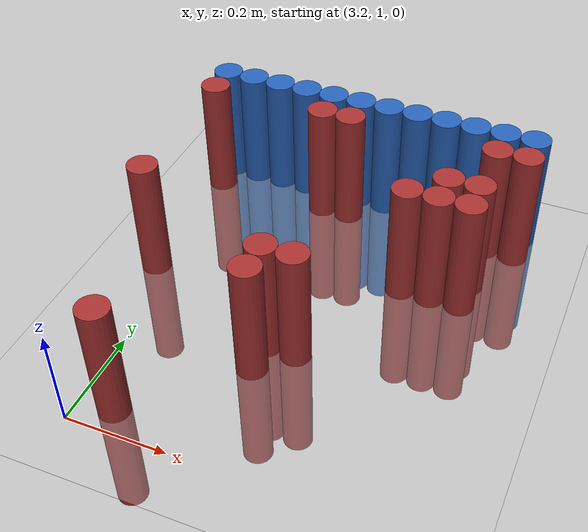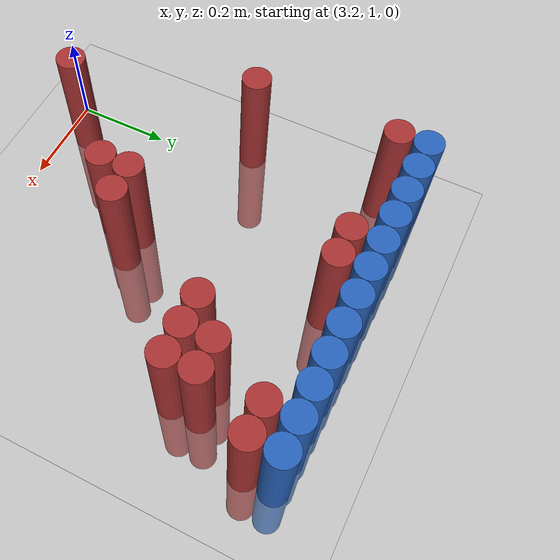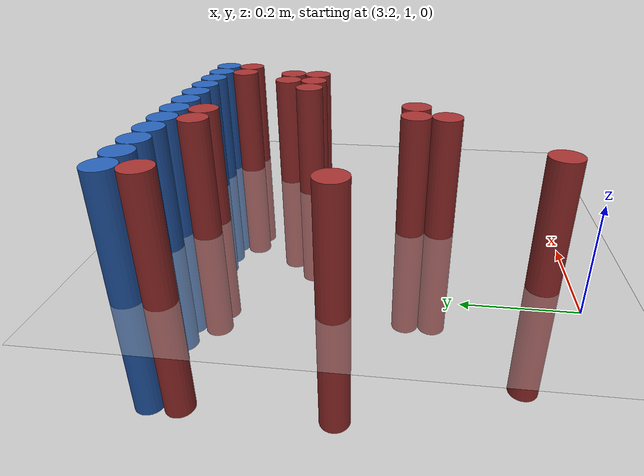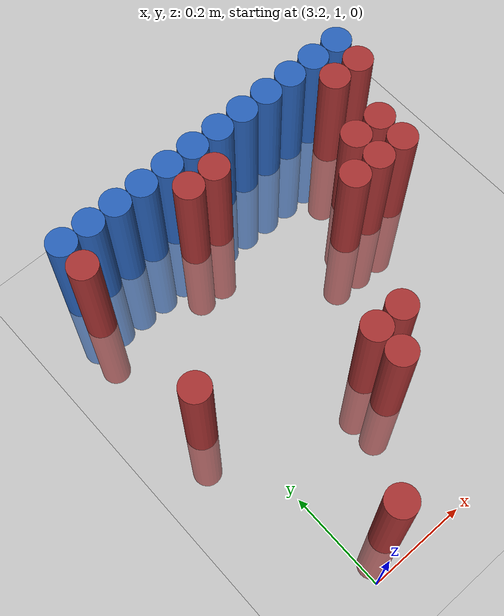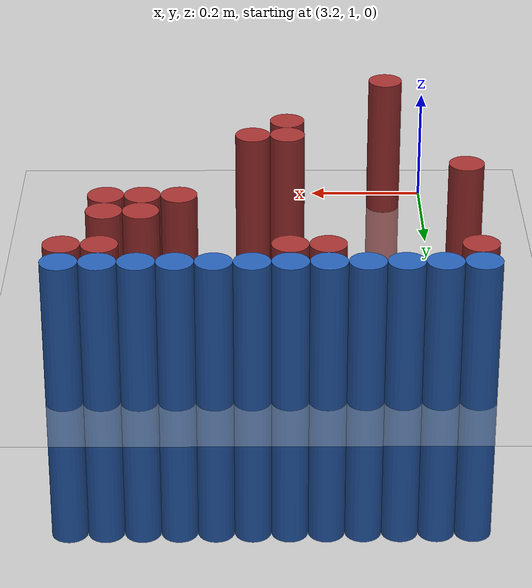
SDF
<sdf version="1.6">
 <world name="default">
  <model name="ground_plane">
   <static>1</static>
   <link name="link">
    <collision name="collision">
     <geometry><plane><normal>0 0 1</normal><size>100 100</size></plane></geometry>
     <surface><friction><ode><mu>100</mu><mu2>50</mu2></ode></friction></surface>
    </collision>
    <visual name="visual">
     <cast_shadows>0</cast_shadows>
     <geometry><plane><normal>0 0 1</normal><size>100 100</size></plane></geometry>
     <material>
      <script><uri>file://media/materials/scripts/gazebo.material</uri><name>Gazebo/Grey</name></script>
     </material>
    </visual>
   </link>
  </model>
  <model name="unit_cylinder_113">
   <static>1</static>
   <pose>3.150000 1.770000 0.000000 0.000000 0.000000 0.000000</pose>
   <link name="link">
    <inertial>
     <mass>1</mass>
     <inertia><ixx>0.145833</ixx><ixy>0</ixy><ixz>0</ixz><iyy>0.145833</iyy><iyz>0</iyz><izz>0.125</izz></inertia>
    </inertial>
    <collision name="collision">
     <geometry><cylinder><radius>0.030000</radius><length>0.5</length></cylinder></geometry>
    </collision>
    <visual name="visual">
     <geometry><cylinder><radius>0.030000</radius><length>0.5</length></cylinder></geometry>
     <material>
      <ambient>0.152000 0.379000 0.720000 1</ambient>
      <diffuse>0.152000 0.379000 0.720000 1</diffuse>
     </material>
     <material>
      <script><name>Gazebo/Grey</name><uri>file://media/materials/scripts/gazebo.material</uri></script>
     </material>
    </visual>
   </link>
  </model>
  <model name="unit_cylinder_114">
   <static>1</static>
   <pose>3.210000 1.770000 0.000000 0.000000 0.000000 0.000000</pose>
   <link name="link">
    <inertial>
     <mass>1</mass>
     <inertia><ixx>0.145833</ixx><ixy>0</ixy><ixz>0</ixz><iyy>0.145833</iyy><iyz>0</iyz><izz>0.125</izz></inertia>
    </inertial>
    <collision name="collision">
     <geometry><cylinder><radius>0.030000</radius><length>0.5</length></cylinder></geometry>
    </collision>
    <visual name="visual">
     <geometry><cylinder><radius>0.030000</radius><length>0.5</length></cylinder></geometry>
     <material>
      <ambient>0.152000 0.379000 0.720000 1</ambient>
      <diffuse>0.152000 0.379000 0.720000 1</diffuse>
     </material>
     <material>
      <script><name>Gazebo/Grey</name><uri>file://media/materials/scripts/gazebo.material</uri></script>
     </material>
    </visual>
   </link>
  </model>
  <model name="unit_cylinder_115">
   <static>1</static>
   <pose>3.270000 1.770000 0.000000 0.000000 0.000000 0.000000</pose>
   <link name="link">
    <inertial>
     <mass>1</mass>
     <inertia><ixx>0.145833</ixx><ixy>0</ixy><ixz>0</ixz><iyy>0.145833</iyy><iyz>0</iyz><izz>0.125</izz></inertia>
    </inertial>
    <collision name="collision">
     <geometry><cylinder><radius>0.030000</radius><length>0.5</length></cylinder></geometry>
    </collision>
    <visual name="visual">
     <geometry><cylinder><radius>0.030000</radius><length>0.5</length></cylinder></geometry>
     <material>
      <ambient>0.152000 0.379000 0.720000 1</ambient>
      <diffuse>0.152000 0.379000 0.720000 1</diffuse>
     </material>
     <material>
      <script><name>Gazebo/Grey</name><uri>file://media/materials/scripts/gazebo.material</uri></script>
     </material>
    </visual>
   </link>
  </model>
  <model name="unit_cylinder_116">
   <static>1</static>
   <pose>3.330000 1.770000 0.000000 0.000000 0.000000 0.000000</pose>
   <link name="link">
    <inertial>
     <mass>1</mass>
     <inertia><ixx>0.145833</ixx><ixy>0</ixy><ixz>0</ixz><iyy>0.145833</iyy><iyz>0</iyz><izz>0.125</izz></inertia>
    </inertial>
    <collision name="collision">
     <geometry><cylinder><radius>0.030000</radius><length>0.5</length></cylinder></geometry>
    </collision>
    <visual name="visual">
     <geometry><cylinder><radius>0.030000</radius><length>0.5</length></cylinder></geometry>
     <material>
      <ambient>0.152000 0.379000 0.720000 1</ambient>
      <diffuse>0.152000 0.379000 0.720000 1</diffuse>
     </material>
     <material>
      <script><name>Gazebo/Grey</name><uri>file://media/materials/scripts/gazebo.material</uri></script>
     </material>
    </visual>
   </link>
  </model>
  <model name="unit_cylinder_117">
   <static>1</static>
   <pose>3.390000 1.770000 0.000000 0.000000 0.000000 0.000000</pose>
   <link name="link">
    <inertial>
     <mass>1</mass>
     <inertia><ixx>0.145833</ixx><ixy>0</ixy><ixz>0</ixz><iyy>0.145833</iyy><iyz>0</iyz><izz>0.125</izz></inertia>
    </inertial>
    <collision name="collision">
     <geometry><cylinder><radius>0.030000</radius><length>0.5</length></cylinder></geometry>
    </collision>
    <visual name="visual">
     <geometry><cylinder><radius>0.030000</radius><length>0.5</length></cylinder></geometry>
     <material>
      <ambient>0.152000 0.379000 0.720000 1</ambient>
      <diffuse>0.152000 0.379000 0.720000 1</diffuse>
     </material>
     <material>
      <script><name>Gazebo/Grey</name><uri>file://media/materials/scripts/gazebo.material</uri></script>
     </material>
    </visual>
   </link>
  </model>
  <model name="unit_cylinder_118">
   <static>1</static>
   <pose>3.450000 1.770000 0.000000 0.000000 0.000000 0.000000</pose>
   <link name="link">
    <inertial>
     <mass>1</mass>
     <inertia><ixx>0.145833</ixx><ixy>0</ixy><ixz>0</ixz><iyy>0.145833</iyy><iyz>0</iyz><izz>0.125</izz></inertia>
    </inertial>
    <collision name="collision">
     <geometry><cylinder><radius>0.030000</radius><length>0.5</length></cylinder></geometry>
    </collision>
    <visual name="visual">
     <geometry><cylinder><radius>0.030000</radius><length>0.5</length></cylinder></geometry>
     <material>
      <ambient>0.152000 0.379000 0.720000 1</ambient>
      <diffuse>0.152000 0.379000 0.720000 1</diffuse>
     </material>
     <material>
      <script><name>Gazebo/Grey</name><uri>file://media/materials/scripts/gazebo.material</uri></script>
     </material>
    </visual>
   </link>
  </model>
  <model name="unit_cylinder_119">
   <static>1</static>
   <pose>3.510000 1.770000 0.000000 0.000000 0.000000 0.000000</pose>
   <link name="link">
    <inertial>
     <mass>1</mass>
     <inertia><ixx>0.145833</ixx><ixy>0</ixy><ixz>0</ixz><iyy>0.145833</iyy><iyz>0</iyz><izz>0.125</izz></inertia>
    </inertial>
    <collision name="collision">
     <geometry><cylinder><radius>0.030000</radius><length>0.5</length></cylinder></geometry>
    </collision>
    <visual name="visual">
     <geometry><cylinder><radius>0.030000</radius><length>0.5</length></cylinder></geometry>
     <material>
      <ambient>0.152000 0.379000 0.720000 1</ambient>
      <diffuse>0.152000 0.379000 0.720000 1</diffuse>
     </material>
     <material>
      <script><name>Gazebo/Grey</name><uri>file://media/materials/scripts/gazebo.material</uri></script>
     </material>
    </visual>
   </link>
  </model>
  <model name="unit_cylinder_120">
   <static>1</static>
   <pose>3.570000 1.770000 0.000000 0.000000 0.000000 0.000000</pose>
   <link name="link">
    <inertial>
     <mass>1</mass>
     <inertia><ixx>0.145833</ixx><ixy>0</ixy><ixz>0</ixz><iyy>0.145833</iyy><iyz>0</iyz><izz>0.125</izz></inertia>
    </inertial>
    <collision name="collision">
     <geometry><cylinder><radius>0.030000</radius><length>0.5</length></cylinder></geometry>
    </collision>
    <visual name="visual">
     <geometry><cylinder><radius>0.030000</radius><length>0.5</length></cylinder></geometry>
     <material>
      <ambient>0.152000 0.379000 0.720000 1</ambient>
      <diffuse>0.152000 0.379000 0.720000 1</diffuse>
     </material>
     <material>
      <script><name>Gazebo/Grey</name><uri>file://media/materials/scripts/gazebo.material</uri></script>
     </material>
    </visual>
   </link>
  </model>
  <model name="unit_cylinder_121">
   <static>1</static>
   <pose>3.630000 1.770000 0.000000 0.000000 0.000000 0.000000</pose>
   <link name="link">
    <inertial>
     <mass>1</mass>
     <inertia><ixx>0.145833</ixx><ixy>0</ixy><ixz>0</ixz><iyy>0.145833</iyy><iyz>0</iyz><izz>0.125</izz></inertia>
    </inertial>
    <collision name="collision">
     <geometry><cylinder><radius>0.030000</radius><length>0.5</length></cylinder></geometry>
    </collision>
    <visual name="visual">
     <geometry><cylinder><radius>0.030000</radius><length>0.5</length></cylinder></geometry>
     <material>
      <ambient>0.152000 0.379000 0.720000 1</ambient>
      <diffuse>0.152000 0.379000 0.720000 1</diffuse>
     </material>
     <material>
      <script><name>Gazebo/Grey</name><uri>file://media/materials/scripts/gazebo.material</uri></script>
     </material>
    </visual>
   </link>
  </model>
  <model name="unit_cylinder_122">
   <static>1</static>
   <pose>3.690000 1.770000 0.000000 0.000000 0.000000 0.000000</pose>
   <link name="link">
    <inertial>
     <mass>1</mass>
     <inertia><ixx>0.145833</ixx><ixy>0</ixy><ixz>0</ixz><iyy>0.145833</iyy><iyz>0</iyz><izz>0.125</izz></inertia>
    </inertial>
    <collision name="collision">
     <geometry><cylinder><radius>0.030000</radius><length>0.5</length></cylinder></geometry>
    </collision>
    <visual name="visual">
     <geometry><cylinder><radius>0.030000</radius><length>0.5</length></cylinder></geometry>
     <material>
      <ambient>0.152000 0.379000 0.720000 1</ambient>
      <diffuse>0.152000 0.379000 0.720000 1</diffuse>
     </material>
     <material>
      <script><name>Gazebo/Grey</name><uri>file://media/materials/scripts/gazebo.material</uri></script>
     </material>
    </visual>
   </link>
  </model>
  <model name="unit_cylinder_123">
   <static>1</static>
   <pose>3.750000 1.770000 0.000000 0.000000 0.000000 0.000000</pose>
   <link name="link">
    <inertial>
     <mass>1</mass>
     <inertia><ixx>0.145833</ixx><ixy>0</ixy><ixz>0</ixz><iyy>0.145833</iyy><iyz>0</iyz><izz>0.125</izz></inertia>
    </inertial>
    <collision name="collision">
     <geometry><cylinder><radius>0.030000</radius><length>0.5</length></cylinder></geometry>
    </collision>
    <visual name="visual">
     <geometry><cylinder><radius>0.030000</radius><length>0.5</length></cylinder></geometry>
     <material>
      <ambient>0.152000 0.379000 0.720000 1</ambient>
      <diffuse>0.152000 0.379000 0.720000 1</diffuse>
     </material>
     <material>
      <script><name>Gazebo/Grey</name><uri>file://media/materials/scripts/gazebo.material</uri></script>
     </material>
    </visual>
   </link>
  </model>
  <model name="unit_cylinder_124">
   <static>1</static>
   <pose>3.810000 1.770000 0.000000 0.000000 0.000000 0.000000</pose>
   <link name="link">
    <inertial>
     <mass>1</mass>
     <inertia><ixx>0.145833</ixx><ixy>0</ixy><ixz>0</ixz><iyy>0.145833</iyy><iyz>0</iyz><izz>0.125</izz></inertia>
    </inertial>
    <collision name="collision">
     <geometry><cylinder><radius>0.030000</radius><length>0.5</length></cylinder></geometry>
    </collision>
    <visual name="visual">
     <geometry><cylinder><radius>0.030000</radius><length>0.5</length></cylinder></geometry>
     <material>
      <ambient>0.152000 0.379000 0.720000 1</ambient>
      <diffuse>0.152000 0.379000 0.720000 1</diffuse>
     </material>
     <material>
      <script><name>Gazebo/Grey</name><uri>file://media/materials/scripts/gazebo.material</uri></script>
     </material>
    </visual>
   </link>
  </model>
  <model name="unit_cylinder_132">
   <static>1</static>
   <pose>3.150000 1.710000 0.000000 0.000000 0.000000 0.000000</pose>
   <link name="link">
    <inertial>
     <mass>1</mass>
     <inertia><ixx>0.145833</ixx><ixy>0</ixy><ixz>0</ixz><iyy>0.145833</iyy><iyz>0</iyz><izz>0.125</izz></inertia>
    </inertial>
    <collision name="collision">
     <geometry><cylinder><radius>0.030000</radius><length>0.5</length></cylinder></geometry>
    </collision>
    <visual name="visual">
     <geometry><cylinder><radius>0.030000</radius><length>0.5</length></cylinder></geometry>
     <material>
      <ambient>0.648000 0.192000 0.192000 1</ambient>
      <diffuse>0.648000 0.192000 0.192000 1</diffuse>
     </material>
     <material>
      <script><name>Gazebo/Grey</name><uri>file://media/materials/scripts/gazebo.material</uri></script>
     </material>
    </visual>
   </link>
  </model>
  <model name="unit_cylinder_133">
   <static>1</static>
   <pose>3.390000 1.710000 0.000000 0.000000 0.000000 0.000000</pose>
   <link name="link">
    <inertial>
     <mass>1</mass>
     <inertia><ixx>0.145833</ixx><ixy>0</ixy><ixz>0</ixz><iyy>0.145833</iyy><iyz>0</iyz><izz>0.125</izz></inertia>
    </inertial>
    <collision name="collision">
     <geometry><cylinder><radius>0.030000</radius><length>0.5</length></cylinder></geometry>
    </collision>
    <visual name="visual">
     <geometry><cylinder><radius>0.030000</radius><length>0.5</length></cylinder></geometry>
     <material>
      <ambient>0.648000 0.192000 0.192000 1</ambient>
      <diffuse>0.648000 0.192000 0.192000 1</diffuse>
     </material>
     <material>
      <script><name>Gazebo/Grey</name><uri>file://media/materials/scripts/gazebo.material</uri></script>
     </material>
    </visual>
   </link>
  </model>
  <model name="unit_cylinder_134">
   <static>1</static>
   <pose>3.450000 1.710000 0.000000 0.000000 0.000000 0.000000</pose>
   <link name="link">
    <inertial>
     <mass>1</mass>
     <inertia><ixx>0.145833</ixx><ixy>0</ixy><ixz>0</ixz><iyy>0.145833</iyy><iyz>0</iyz><izz>0.125</izz></inertia>
    </inertial>
    <collision name="collision">
     <geometry><cylinder><radius>0.030000</radius><length>0.5</length></cylinder></geometry>
    </collision>
    <visual name="visual">
     <geometry><cylinder><radius>0.030000</radius><length>0.5</length></cylinder></geometry>
     <material>
      <ambient>0.648000 0.192000 0.192000 1</ambient>
      <diffuse>0.648000 0.192000 0.192000 1</diffuse>
     </material>
     <material>
      <script><name>Gazebo/Grey</name><uri>file://media/materials/scripts/gazebo.material</uri></script>
     </material>
    </visual>
   </link>
  </model>
  <model name="unit_cylinder_135">
   <static>1</static>
   <pose>3.750000 1.710000 0.000000 0.000000 0.000000 0.000000</pose>
   <link name="link">
    <inertial>
     <mass>1</mass>
     <inertia><ixx>0.145833</ixx><ixy>0</ixy><ixz>0</ixz><iyy>0.145833</iyy><iyz>0</iyz><izz>0.125</izz></inertia>
    </inertial>
    <collision name="collision">
     <geometry><cylinder><radius>0.030000</radius><length>0.5</length></cylinder></geometry>
    </collision>
    <visual name="visual">
     <geometry><cylinder><radius>0.030000</radius><length>0.5</length></cylinder></geometry>
     <material>
      <ambient>0.648000 0.192000 0.192000 1</ambient>
      <diffuse>0.648000 0.192000 0.192000 1</diffuse>
     </material>
     <material>
      <script><name>Gazebo/Grey</name><uri>file://media/materials/scripts/gazebo.material</uri></script>
     </material>
    </visual>
   </link>
  </model>
  <model name="unit_cylinder_136">
   <static>1</static>
   <pose>3.810000 1.710000 0.000000 0.000000 0.000000 0.000000</pose>
   <link name="link">
    <inertial>
     <mass>1</mass>
     <inertia><ixx>0.145833</ixx><ixy>0</ixy><ixz>0</ixz><iyy>0.145833</iyy><iyz>0</iyz><izz>0.125</izz></inertia>
    </inertial>
    <collision name="collision">
     <geometry><cylinder><radius>0.030000</radius><length>0.5</length></cylinder></geometry>
    </collision>
    <visual name="visual">
     <geometry><cylinder><radius>0.030000</radius><length>0.5</length></cylinder></geometry>
     <material>
      <ambient>0.648000 0.192000 0.192000 1</ambient>
      <diffuse>0.648000 0.192000 0.192000 1</diffuse>
     </material>
     <material>
      <script><name>Gazebo/Grey</name><uri>file://media/materials/scripts/gazebo.material</uri></script>
     </material>
    </visual>
   </link>
  </model>
  <model name="unit_cylinder_138">
   <static>1</static>
   <pose>3.690000 1.590000 0.000000 0.000000 0.000000 0.000000</pose>
   <link name="link">
    <inertial>
     <mass>1</mass>
     <inertia><ixx>0.145833</ixx><ixy>0</ixy><ixz>0</ixz><iyy>0.145833</iyy><iyz>0</iyz><izz>0.125</izz></inertia>
    </inertial>
    <collision name="collision">
     <geometry><cylinder><radius>0.030000</radius><length>0.5</length></cylinder></geometry>
    </collision>
    <visual name="visual">
     <geometry><cylinder><radius>0.030000</radius><length>0.5</length></cylinder></geometry>
     <material>
      <ambient>0.648000 0.192000 0.192000 1</ambient>
      <diffuse>0.648000 0.192000 0.192000 1</diffuse>
     </material>
     <material>
      <script><name>Gazebo/Grey</name><uri>file://media/materials/scripts/gazebo.material</uri></script>
     </material>
    </visual>
   </link>
  </model>
  <model name="unit_cylinder_139">
   <static>1</static>
   <pose>3.750000 1.590000 0.000000 0.000000 0.000000 0.000000</pose>
   <link name="link">
    <inertial>
     <mass>1</mass>
     <inertia><ixx>0.145833</ixx><ixy>0</ixy><ixz>0</ixz><iyy>0.145833</iyy><iyz>0</iyz><izz>0.125</izz></inertia>
    </inertial>
    <collision name="collision">
     <geometry><cylinder><radius>0.030000</radius><length>0.5</length></cylinder></geometry>
    </collision>
    <visual name="visual">
     <geometry><cylinder><radius>0.030000</radius><length>0.5</length></cylinder></geometry>
     <material>
      <ambient>0.648000 0.192000 0.192000 1</ambient>
      <diffuse>0.648000 0.192000 0.192000 1</diffuse>
     </material>
     <material>
      <script><name>Gazebo/Grey</name><uri>file://media/materials/scripts/gazebo.material</uri></script>
     </material>
    </visual>
   </link>
  </model>
  <model name="unit_cylinder_141">
   <static>1</static>
   <pose>3.630000 1.530000 0.000000 0.000000 0.000000 0.000000</pose>
   <link name="link">
    <inertial>
     <mass>1</mass>
     <inertia><ixx>0.145833</ixx><ixy>0</ixy><ixz>0</ixz><iyy>0.145833</iyy><iyz>0</iyz><izz>0.125</izz></inertia>
    </inertial>
    <collision name="collision">
     <geometry><cylinder><radius>0.030000</radius><length>0.5</length></cylinder></geometry>
    </collision>
    <visual name="visual">
     <geometry><cylinder><radius>0.030000</radius><length>0.5</length></cylinder></geometry>
     <material>
      <ambient>0.648000 0.192000 0.192000 1</ambient>
      <diffuse>0.648000 0.192000 0.192000 1</diffuse>
     </material>
     <material>
      <script><name>Gazebo/Grey</name><uri>file://media/materials/scripts/gazebo.material</uri></script>
     </material>
    </visual>
   </link>
  </model>
  <model name="unit_cylinder_142">
   <static>1</static>
   <pose>3.690000 1.530000 0.000000 0.000000 0.000000 0.000000</pose>
   <link name="link">
    <inertial>
     <mass>1</mass>
     <inertia><ixx>0.145833</ixx><ixy>0</ixy><ixz>0</ixz><iyy>0.145833</iyy><iyz>0</iyz><izz>0.125</izz></inertia>
    </inertial>
    <collision name="collision">
     <geometry><cylinder><radius>0.030000</radius><length>0.5</length></cylinder></geometry>
    </collision>
    <visual name="visual">
     <geometry><cylinder><radius>0.030000</radius><length>0.5</length></cylinder></geometry>
     <material>
      <ambient>0.648000 0.192000 0.192000 1</ambient>
      <diffuse>0.648000 0.192000 0.192000 1</diffuse>
     </material>
     <material>
      <script><name>Gazebo/Grey</name><uri>file://media/materials/scripts/gazebo.material</uri></script>
     </material>
    </visual>
   </link>
  </model>
  <model name="unit_cylinder_143">
   <static>1</static>
   <pose>3.750000 1.530000 0.000000 0.000000 0.000000 0.000000</pose>
   <link name="link">
    <inertial>
     <mass>1</mass>
     <inertia><ixx>0.145833</ixx><ixy>0</ixy><ixz>0</ixz><iyy>0.145833</iyy><iyz>0</iyz><izz>0.125</izz></inertia>
    </inertial>
    <collision name="collision">
     <geometry><cylinder><radius>0.030000</radius><length>0.5</length></cylinder></geometry>
    </collision>
    <visual name="visual">
     <geometry><cylinder><radius>0.030000</radius><length>0.5</length></cylinder></geometry>
     <material>
      <ambient>0.648000 0.192000 0.192000 1</ambient>
      <diffuse>0.648000 0.192000 0.192000 1</diffuse>
     </material>
     <material>
      <script><name>Gazebo/Grey</name><uri>file://media/materials/scripts/gazebo.material</uri></script>
     </material>
    </visual>
   </link>
  </model>
  <model name="unit_cylinder_146">
   <static>1</static>
   <pose>3.150000 1.410000 0.000000 0.000000 0.000000 0.000000</pose>
   <link name="link">
    <inertial>
     <mass>1</mass>
     <inertia><ixx>0.145833</ixx><ixy>0</ixy><ixz>0</ixz><iyy>0.145833</iyy><iyz>0</iyz><izz>0.125</izz></inertia>
    </inertial>
    <collision name="collision">
     <geometry><cylinder><radius>0.030000</radius><length>0.5</length></cylinder></geometry>
    </collision>
    <visual name="visual">
     <geometry><cylinder><radius>0.030000</radius><length>0.5</length></cylinder></geometry>
     <material>
      <ambient>0.648000 0.192000 0.192000 1</ambient>
      <diffuse>0.648000 0.192000 0.192000 1</diffuse>
     </material>
     <material>
      <script><name>Gazebo/Grey</name><uri>file://media/materials/scripts/gazebo.material</uri></script>
     </material>
    </visual>
   </link>
  </model>
  <model name="unit_cylinder_148">
   <static>1</static>
   <pose>3.450000 1.290000 0.000000 0.000000 0.000000 0.000000</pose>
   <link name="link">
    <inertial>
     <mass>1</mass>
     <inertia><ixx>0.145833</ixx><ixy>0</ixy><ixz>0</ixz><iyy>0.145833</iyy><iyz>0</iyz><izz>0.125</izz></inertia>
    </inertial>
    <collision name="collision">
     <geometry><cylinder><radius>0.030000</radius><length>0.5</length></cylinder></geometry>
    </collision>
    <visual name="visual">
     <geometry><cylinder><radius>0.030000</radius><length>0.5</length></cylinder></geometry>
     <material>
      <ambient>0.648000 0.192000 0.192000 1</ambient>
      <diffuse>0.648000 0.192000 0.192000 1</diffuse>
     </material>
     <material>
      <script><name>Gazebo/Grey</name><uri>file://media/materials/scripts/gazebo.material</uri></script>
     </material>
    </visual>
   </link>
  </model>
  <model name="unit_cylinder_149">
   <static>1</static>
   <pose>3.510000 1.290000 0.000000 0.000000 0.000000 0.000000</pose>
   <link name="link">
    <inertial>
     <mass>1</mass>
     <inertia><ixx>0.145833</ixx><ixy>0</ixy><ixz>0</ixz><iyy>0.145833</iyy><iyz>0</iyz><izz>0.125</izz></inertia>
    </inertial>
    <collision name="collision">
     <geometry><cylinder><radius>0.030000</radius><length>0.5</length></cylinder></geometry>
    </collision>
    <visual name="visual">
     <geometry><cylinder><radius>0.030000</radius><length>0.5</length></cylinder></geometry>
     <material>
      <ambient>0.648000 0.192000 0.192000 1</ambient>
      <diffuse>0.648000 0.192000 0.192000 1</diffuse>
     </material>
     <material>
      <script><name>Gazebo/Grey</name><uri>file://media/materials/scripts/gazebo.material</uri></script>
     </material>
    </visual>
   </link>
  </model>
  <model name="unit_cylinder_150">
   <static>1</static>
   <pose>3.450000 1.230000 0.000000 0.000000 0.000000 0.000000</pose>
   <link name="link">
    <inertial>
     <mass>1</mass>
     <inertia><ixx>0.145833</ixx><ixy>0</ixy><ixz>0</ixz><iyy>0.145833</iyy><iyz>0</iyz><izz>0.125</izz></inertia>
    </inertial>
    <collision name="collision">
     <geometry><cylinder><radius>0.030000</radius><length>0.5</length></cylinder></geometry>
    </collision>
    <visual name="visual">
     <geometry><cylinder><radius>0.030000</radius><length>0.5</length></cylinder></geometry>
     <material>
      <ambient>0.648000 0.192000 0.192000 1</ambient>
      <diffuse>0.648000 0.192000 0.192000 1</diffuse>
     </material>
     <material>
      <script><name>Gazebo/Grey</name><uri>file://media/materials/scripts/gazebo.material</uri></script>
     </material>
    </visual>
   </link>
  </model>
  <model name="unit_cylinder_156">
   <static>1</static>
   <pose>3.270000 1.050000 0.000000 0.000000 0.000000 0.000000</pose>
   <link name="link">
    <inertial>
     <mass>1</mass>
     <inertia><ixx>0.145833</ixx><ixy>0</ixy><ixz>0</ixz><iyy>0.145833</iyy><iyz>0</iyz><izz>0.125</izz></inertia>
    </inertial>
    <collision name="collision">
     <geometry><cylinder><radius>0.030000</radius><length>0.5</length></cylinder></geometry>
    </collision>
    <visual name="visual">
     <geometry><cylinder><radius>0.030000</radius><length>0.5</length></cylinder></geometry>
     <material>
      <ambient>0.648000 0.192000 0.192000 1</ambient>
      <diffuse>0.648000 0.192000 0.192000 1</diffuse>
     </material>
     <material>
      <script><name>Gazebo/Grey</name><uri>file://media/materials/scripts/gazebo.material</uri></script>
     </material>
    </visual>
   </link>
  </model>
 </world>
</sdf>
